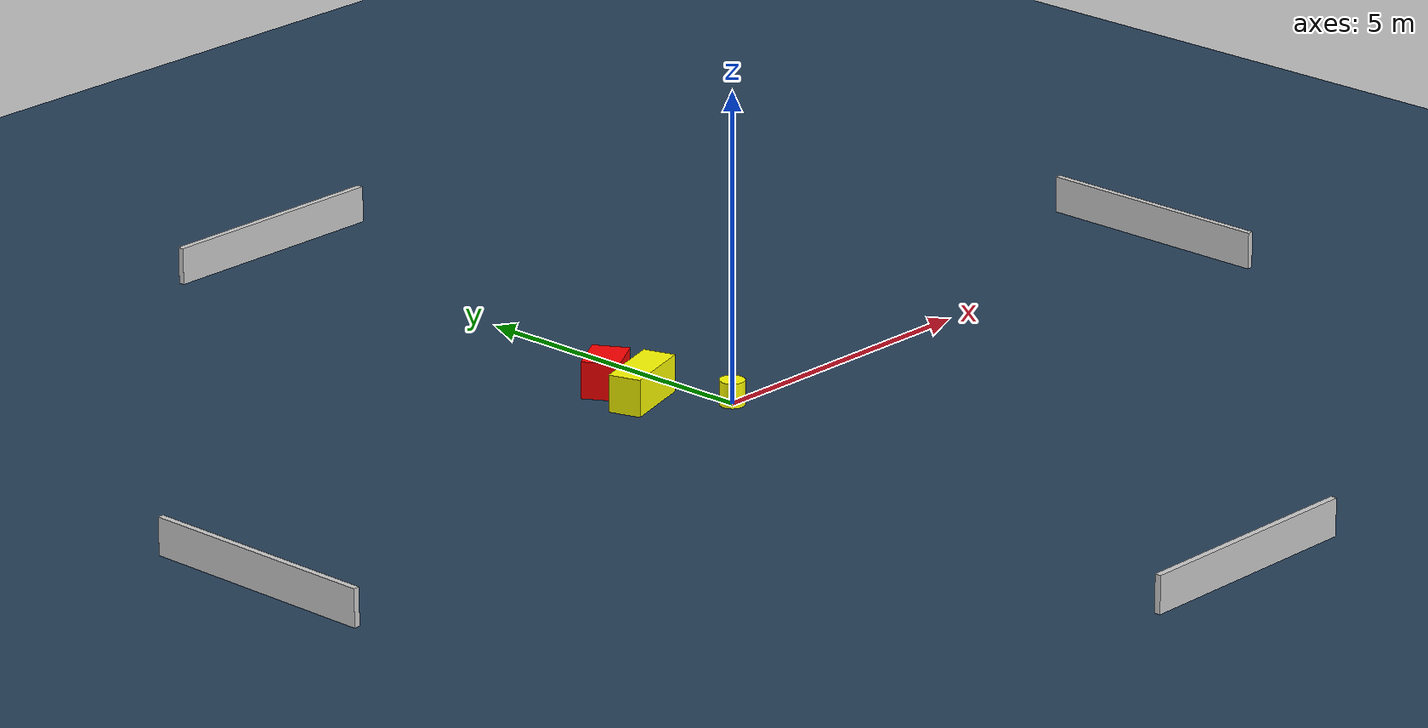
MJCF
<?xml version="1.0" ?>
<mujoco model="generated_environment">
  <option timestep="0.01" integrator="RK4" cone="elliptic"/>
  <default>
    <geom density="1"/>
  </default>
  <asset>
    <texture builtin="gradient" height="3072" name="skybox" rgb1="0.3 0.5 0.7" rgb2="0 0 0" type="skybox" width="512"/>
    <texture builtin="checker" height="300" name="groundplane" rgb1="0.2 0.3 0.4" rgb2="0.1 0.2 0.3" type="2d" width="300"/>
    <material name="groundplane" reflectance="0.2" texrepeat="5 5" texture="groundplane"/>
  </asset>
  <worldbody>
    <light dir="0 0 -1" directional="true" pos="0 0 1.5"/>
    <geom condim="3" friction="0.5 0.005 0.001" material="groundplane" name="floor" pos="0 0 0" size="0 0 0.05" type="plane"/>
    <body name="walls">
      <geom name="wall_1" condim="4" pos="-10.0 0.0 0.3" rgba="0.800000011920929 0.800000011920929 0.800000011920929 1.0" size="0.05 2.0 0.3" type="box"/>
      <geom name="wall_2" condim="4" pos="10.0 0.0 0.3" rgba="0.800000011920929 0.800000011920929 0.800000011920929 1.0" size="0.05 2.0 0.3" type="box"/>
      <geom name="wall_3" condim="4" pos="0.0 -10.0 0.3" rgba="0.800000011920929 0.800000011920929 0.800000011920929 1.0" size="2.0 0.05 0.3" type="box"/>
      <geom name="wall_4" condim="4" pos="0.0 10.0 0.3" rgba="0.800000011920929 0.800000011920929 0.800000011920929 1.0" size="2.0 0.05 0.3" type="box"/>
    </body>
    <body name="robot">
      <joint name="joint_x" type="slide" pos="0 0 0" axis="1 0 0"/>
      <joint name="joint_y" type="slide" pos="0 0 0" axis="0 1 0"/>
      <geom name="robot" type="cylinder" pos="0.0 0.0 0.2" size="0.2 0.2 0.0" mass="5.0" friction="1.0 0.005 0.0001" condim="4" rgba="1.0 1.0 0.0 1.0"/>
    </body>
    <body name="obstacle_1_movable">
      <geom name="obstacle_1_movable" condim="4" pos="-0.8463131904488255 1.0815161554666015 0.3" euler="0 0 17.168796505975855" friction="0.0 0.005 0.001" rgba="1.0 1.0 0.0 1.0" size="0.6094269278846896 0.26443276150968725 0.3" type="box" mass="0.1"/>
      <joint type="free"/>
    </body>
    <body name="obstacle_2_static">
      <geom name="obstacle_2_static" condim="4" pos="-0.9062894964357993 1.782381962105075 0.3" euler="0 0 210.52415932023393" friction="0.0 0.005 0.001" rgba="1.0 0.0 0.0 1.0" size="0.37679621236127975 0.29941385632855955 0.3" type="box"/>
    </body>
  </worldbody>
  <actuator>
    <motor name="actuator_x" joint="joint_x" gear="1" ctrlrange="-1 1"/>
    <motor name="actuator_y" joint="joint_y" gear="1" ctrlrange="-1 1"/>
  </actuator>
</mujoco>
